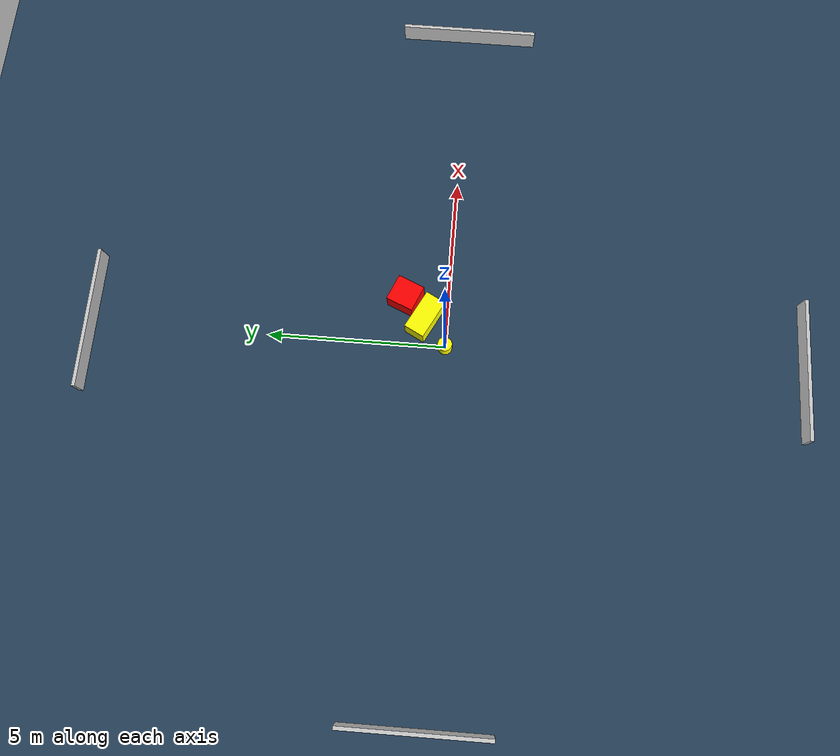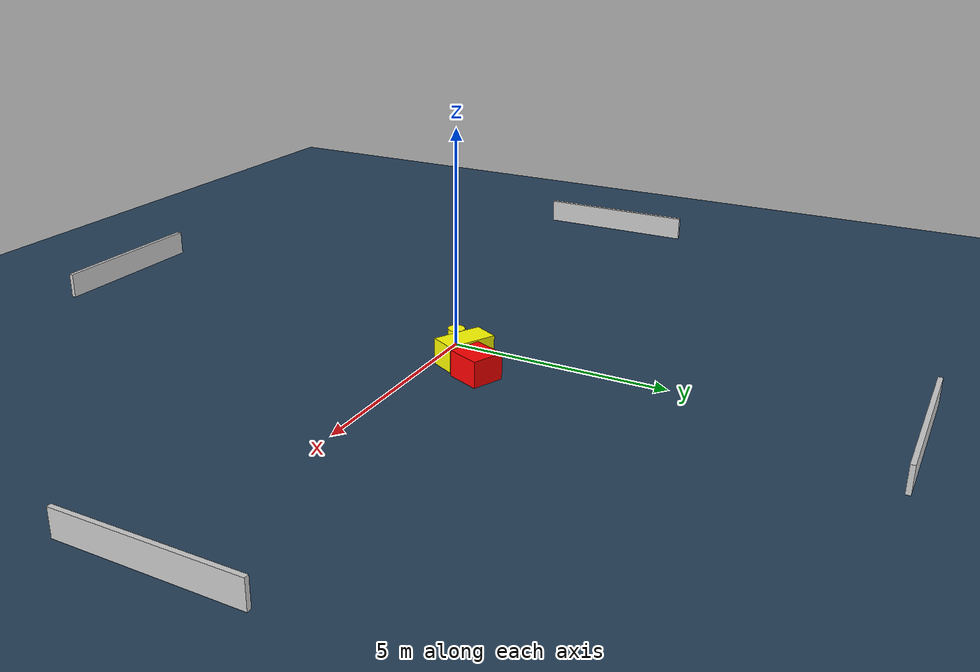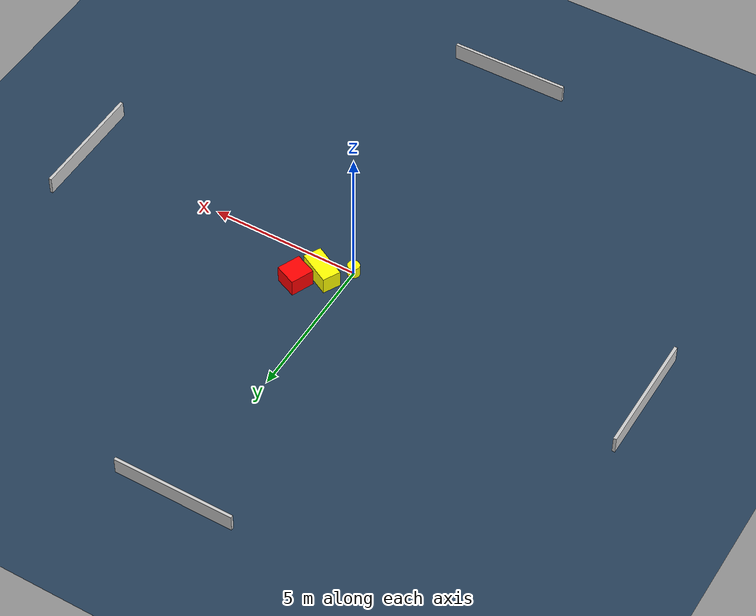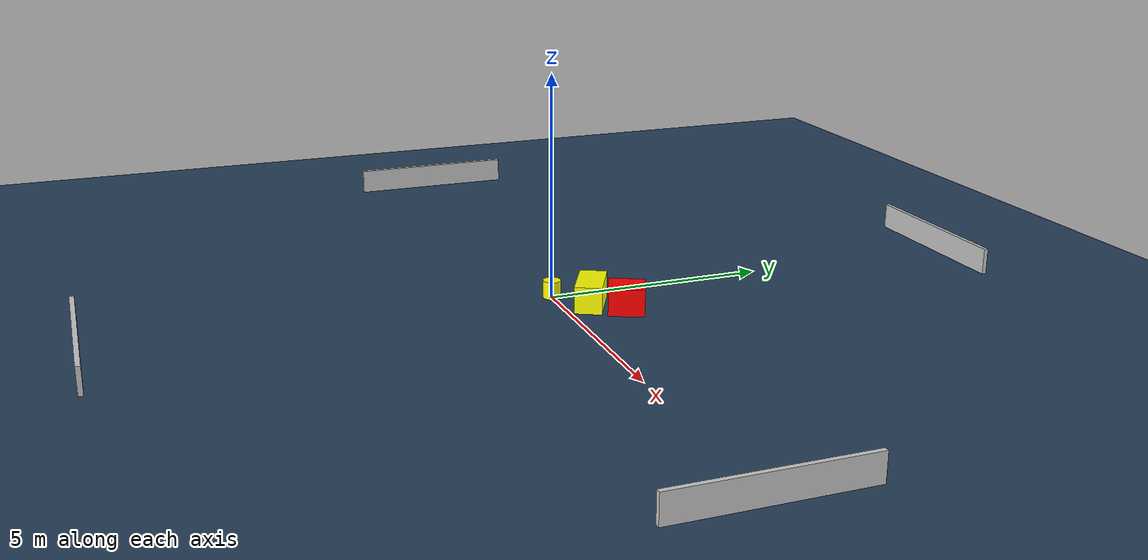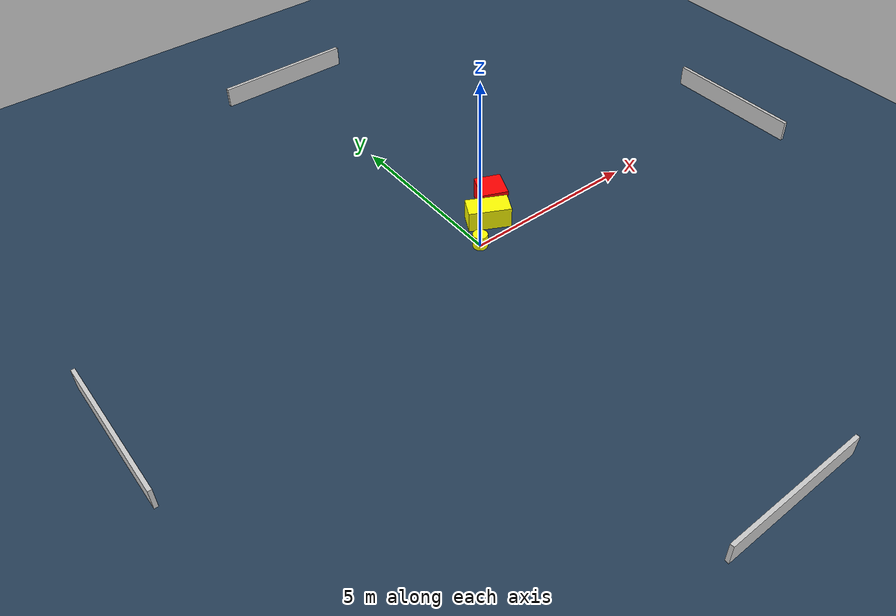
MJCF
<?xml version="1.0" ?>
<mujoco model="generated_environment">
  <option timestep="0.01" integrator="RK4" cone="elliptic"/>
  <default>
    <geom density="1"/>
  </default>
  <asset>
    <texture builtin="gradient" height="3072" name="skybox" rgb1="0.3 0.5 0.7" rgb2="0 0 0" type="skybox" width="512"/>
    <texture builtin="checker" height="300" name="groundplane" rgb1="0.2 0.3 0.4" rgb2="0.1 0.2 0.3" type="2d" width="300"/>
    <material name="groundplane" reflectance="0.2" texrepeat="5 5" texture="groundplane"/>
  </asset>
  <worldbody>
    <light dir="0 0 -1" directional="true" pos="0 0 1.5"/>
    <geom condim="3" friction="0.5 0.005 0.001" material="groundplane" name="floor" pos="0 0 0" size="0 0 0.05" type="plane"/>
    <body name="walls">
      <geom name="wall_1" condim="4" pos="-10.0 0.0 0.3" rgba="0.800000011920929 0.800000011920929 0.800000011920929 1.0" size="0.05 2.0 0.3" type="box"/>
      <geom name="wall_2" condim="4" pos="10.0 0.0 0.3" rgba="0.800000011920929 0.800000011920929 0.800000011920929 1.0" size="0.05 2.0 0.3" type="box"/>
      <geom name="wall_3" condim="4" pos="0.0 -10.0 0.3" rgba="0.800000011920929 0.800000011920929 0.800000011920929 1.0" size="2.0 0.05 0.3" type="box"/>
      <geom name="wall_4" condim="4" pos="0.0 10.0 0.3" rgba="0.800000011920929 0.800000011920929 0.800000011920929 1.0" size="2.0 0.05 0.3" type="box"/>
    </body>
    <body name="robot">
      <joint name="joint_x" type="slide" pos="0 0 0" axis="1 0 0"/>
      <joint name="joint_y" type="slide" pos="0 0 0" axis="0 1 0"/>
      <geom name="robot" type="cylinder" pos="0.0 0.0 0.2" size="0.2 0.2 0.0" mass="5.0" friction="1.0 0.005 0.0001" condim="4" rgba="1.0 1.0 0.0 1.0"/>
    </body>
    <body name="obstacle_1_movable">
      <geom name="obstacle_1_movable" condim="4" pos="0.7685921196520353 0.6179177390895133 0.3" euler="0 0 152.4590758727209" friction="0.0 0.005 0.001" rgba="1.0 1.0 0.0 1.0" size="0.5833512617897363 0.30247058043083086 0.3" type="box" mass="0.1"/>
      <joint type="free"/>
    </body>
    <body name="obstacle_2_static">
      <geom name="obstacle_2_static" condim="4" pos="1.3514456665190637 1.2142832730770716 0.3" euler="0 0 156.90731440429383" friction="0.0 0.005 0.001" rgba="1.0 0.0 0.0 1.0" size="0.37741842272097215 0.39548684268380374 0.3" type="box"/>
    </body>
  </worldbody>
  <actuator>
    <motor name="actuator_x" joint="joint_x" gear="1" ctrlrange="-1 1"/>
    <motor name="actuator_y" joint="joint_y" gear="1" ctrlrange="-1 1"/>
  </actuator>
</mujoco>
